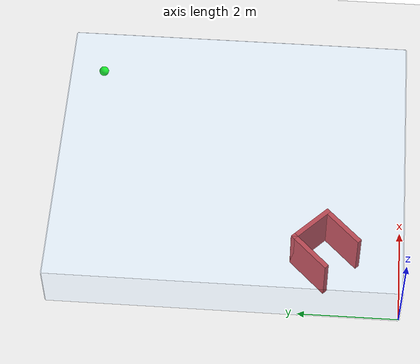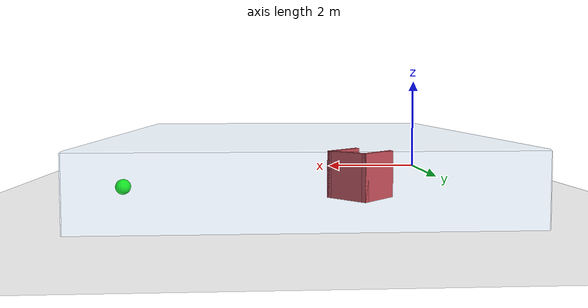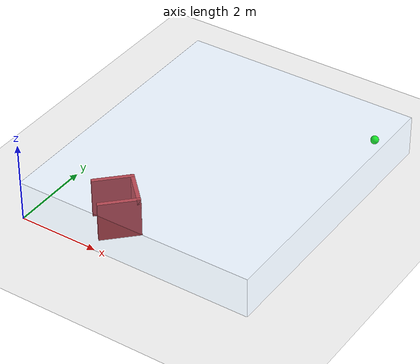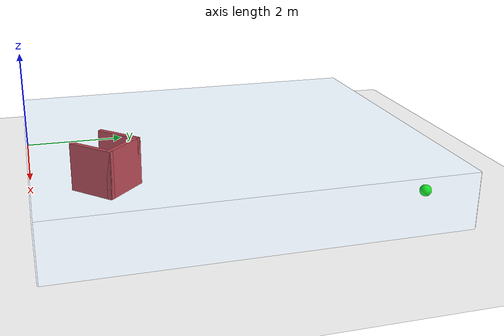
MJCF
<mujoco model="Safe APF Cave Map">
    <option timestep="0.001"/>

    <asset>
        <material name="boundary" rgba="0.5 0.7 0.9 0.12"/>
    </asset>

    <worldbody>
        <geom name="floor" type="plane" size="0 0 0.05" rgba="0.8 0.8 0.8 1"/>

        <geom name="ceiling" type="box" pos="3.0 3.5 1.0" size="3.0 3.5 0.02"
              material="boundary" contype="0" conaffinity="0"/>
        <geom name="wall_xn" type="box" pos="0.0 3.5 0.5" size="0.02 3.5 0.5"
              material="boundary" contype="0" conaffinity="0"/>
        <geom name="wall_xp" type="box" pos="6.0 3.5 0.5" size="0.02 3.5 0.5"
              material="boundary" contype="0" conaffinity="0"/>
        <geom name="wall_yn" type="box" pos="3.0 0.0 0.5" size="3.0 0.02 0.5"
              material="boundary" contype="0" conaffinity="0"/>
        <geom name="wall_yp" type="box" pos="3.0 7.0 0.5" size="3.0 0.02 0.5"
              material="boundary" contype="0" conaffinity="0"/>

        <body name="uwall_bottom" pos="1.81819805 1.81819805 0" euler="0 0 -45">
            <geom type="box" size="0.5 0.05 0.5"
                  rgba="0.8 0.2 0.2 1"
                  contype="1" conaffinity="1"
                  density="1000"/>
        </body>

        <body name="uwall_left" pos="1.18180195 1.81819805 0" euler="0 0 -45">
            <geom type="box" size="0.05 0.5 0.5"
                  rgba="0.8 0.2 0.2 1"
                  contype="1" conaffinity="1"
                  density="1000"/>
        </body>

        <body name="uwall_right" pos="1.81819805 1.18180195 0" euler="0 0 -45">
            <geom type="box" size="0.05 0.5 0.5"
                  rgba="0.8 0.2 0.2 1"
                  contype="1" conaffinity="1"
                  density="1000"/>
        </body>

        <body name="goal" pos="5.4 6.4 0.5">
            <geom type="sphere" size="0.1"
                  rgba="0 1 0 1"
                  contype="0" conaffinity="0"/>
        </body>
    </worldbody>
</mujoco>
